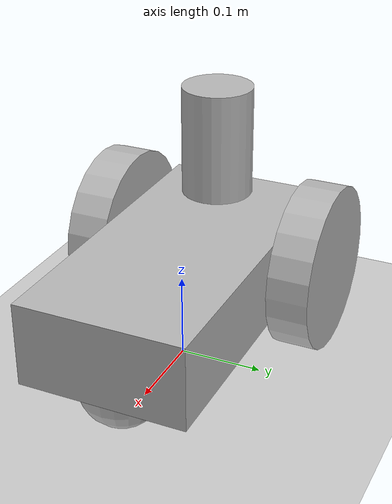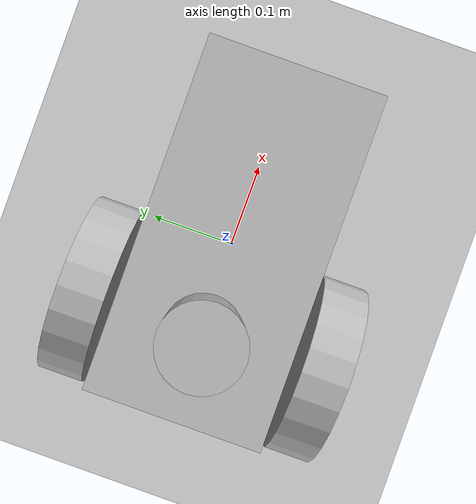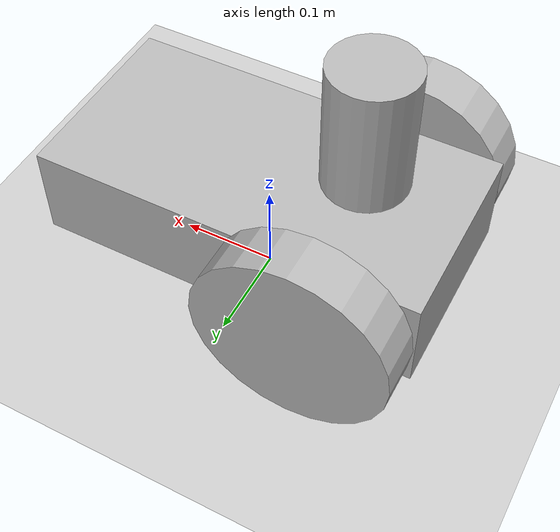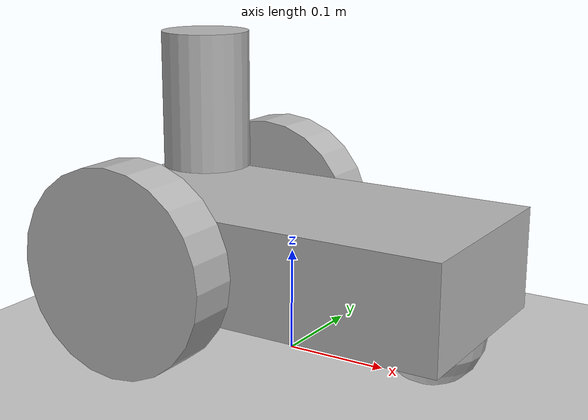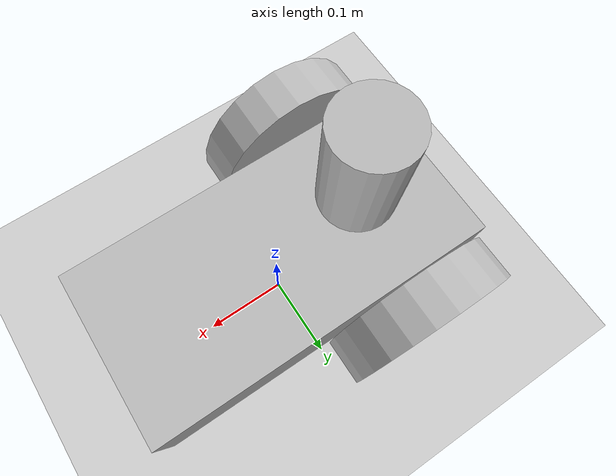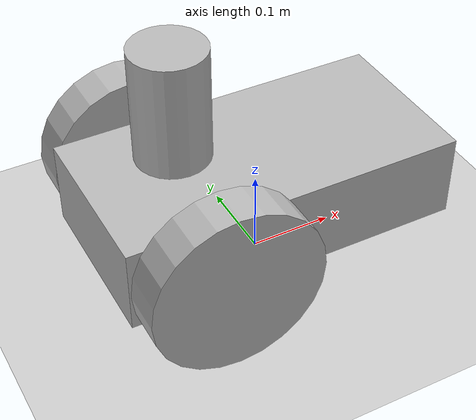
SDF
<sdf version="1.5">
 <world name="default">
  <include><uri>model://sun</uri></include>
  <include><uri>model://ground_plane</uri></include>
  <include><uri>model://diffcart</uri></include>
 </world>
</sdf>

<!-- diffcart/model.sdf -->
<sdf version="1.5">
<model name="diffcart">
    <static>false</static>
    <plugin name="diffcart_control" filename="libdiffcart_plugin.so"/>

    <link name="base">
        <pose>0 0 0.1 0 0 0</pose>
        <sensor type="imu" name="imu">
            <always_on>true</always_on>
            <update_rate>100</update_rate>
            <visualize>true</visualize>
            <imu>
                <noise>
                    <type>gaussian</type>
                    <rate>
                        <mean>0.0</mean>
                        <stddev>1.96e-06</stddev>
                        <bias_mean>0.0</bias_mean>
                        <bias_stddev>0.0</bias_stddev>
                    </rate>
                    <accel>
                        <mean>0.0</mean>
                        <stddev>1.7e-2</stddev>
                        <bias_mean>0.1</bias_mean>
                        <bias_stddev>0.001</bias_stddev>
                    </accel>
                </noise>
            </imu>
        </sensor>

        <collision name="base_collision">
            <geometry>
                <box>
                    <size>0.4 0.2 0.1</size>
                </box>
            </geometry>
        </collision>
        <visual name="base_visual">
            <geometry>
                <box>
                    <size>0.4 0.2 0.1</size>
                </box>
            </geometry>
        </visual>

        <collision name="base_ball_collision">
            <pose>0.15 0 -0.05 0 0 0</pose>
            <geometry>
                <sphere>
                    <radius>0.05</radius>
                </sphere>
            </geometry>
            <surface>
                <friction>
                    <ode>
                        <mu>0</mu>
                        <mu2>0</mu2>
                        <slip1>1.0</slip1>
                        <slip2>1.0</slip2>
                    </ode>
                </friction>
            </surface>
        </collision>

        <visual name="base_ball_visual">
            <pose>0.15 0 -0.05 0 0 0</pose>
            <geometry>
                <sphere>
                    <radius>0.05</radius>
                </sphere>
            </geometry>
        </visual>
    </link>

    <link name="left_wheel">
        <pose>-0.1 0.13 0.1 -1.5707 0 0</pose>
        <collision name="left_wheel_collision">
            <geometry>
                <cylinder>
                    <radius>0.1</radius>
                    <length>0.05</length>
                </cylinder>
            </geometry>
        </collision>
        <visual name="left_wheeel_visual">
            <geometry>
                <cylinder>
                    <radius>0.1</radius>
                    <length>0.05</length>
                </cylinder>
            </geometry>
        </visual>
    </link>

    <link name="right_wheel">
        <pose>-0.1 -0.13 0.1 -1.5707 0 0</pose>
        <collision name="right_wheel_collision">
            <geometry>
                <cylinder>
                    <radius>0.1</radius>
                    <length>0.05</length>
                </cylinder>
            </geometry>
        </collision>
        <visual name="right_wheeel_visual">
            <geometry>
                <cylinder>
                    <radius>0.1</radius>
                    <length>0.05</length>
                </cylinder>
            </geometry>
        </visual>
    </link>

    <joint type="revolute" name="base_2_left_wheel">
        <parent>base</parent>
        <child>left_wheel</child>
        <axis>
            <xyz>0 0 1</xyz>
        </axis>
    </joint>

    <joint type="revolute" name="base_2_right_wheel">
        <parent>base</parent>
        <child>right_wheel</child>
        <axis>
            <xyz>0 0 1</xyz>
        </axis>
    </joint>

    <link name="lidar">
        <pose>-0.1 0 0.24 0 0 0</pose>
        <collision name="lidar_collision">
            <geometry>
                <cylinder>
                    <radius>0.04267</radius>
                    <length>0.13224</length>
                </cylinder>
            </geometry>
        </collision>
        <visual name="lidar_visual">
            <geometry>
                <cylinder>
                    <radius>0.04267</radius>
                    <length>0.13224</length>
                </cylinder>
            </geometry>
        </visual>
        <sensor type="ray" name="lidar">
            <pose>0 0 0.1058 0 0 0</pose>
            <visualize>false</visualize>
            <update_rate>5</update_rate>
            <ray>
                <noise>
                    <type>gaussian</type>
                    <mean>0.0</mean>
                    <stddev>0.02</stddev>
                </noise>
                <scan>
                    <horizontal>
                        <samples>90</samples>
                        <resolution>1</resolution>
                        <min_angle>-3.1415926</min_angle>
                        <max_angle>3.1415926</max_angle>
                    </horizontal>

                    <vertical>
                        <samples>32</samples>
                        <resolution>1</resolution>
                        <min_angle>-0.53529248</min_angle>
                        <max_angle>0.18622663</max_angle>
                    </vertical>
                </scan>
                <range>
                    <min>0.05</min>
                    <max>70</max>
                    <resolution>0.02</resolution>
                </range>
            </ray>
        </sensor>
    </link>

    <joint type="fixed" name="base_2_lidar">
        <parent>base</parent>
        <child>lidar</child>
    </joint>

</model>
</sdf>
